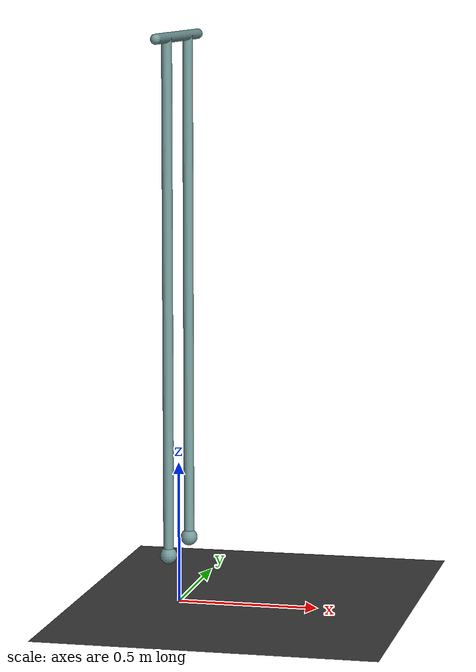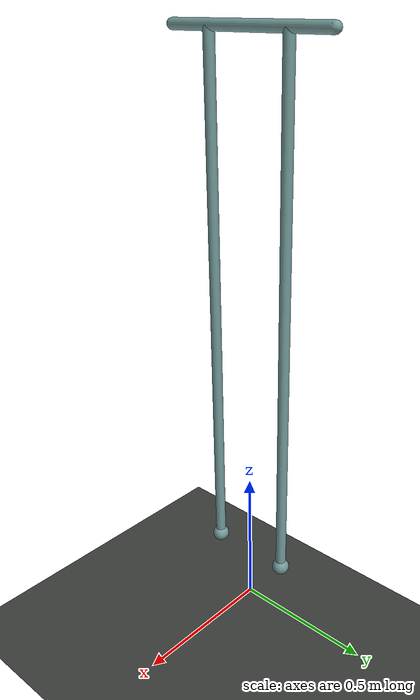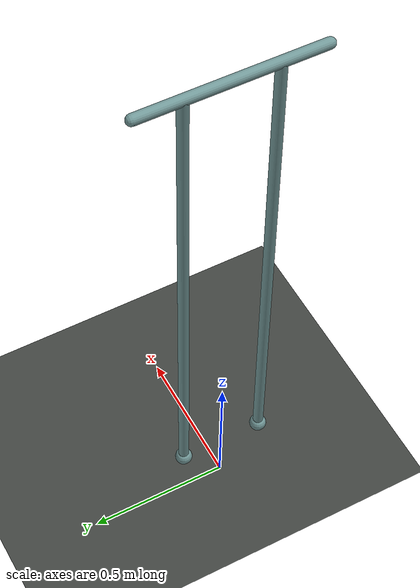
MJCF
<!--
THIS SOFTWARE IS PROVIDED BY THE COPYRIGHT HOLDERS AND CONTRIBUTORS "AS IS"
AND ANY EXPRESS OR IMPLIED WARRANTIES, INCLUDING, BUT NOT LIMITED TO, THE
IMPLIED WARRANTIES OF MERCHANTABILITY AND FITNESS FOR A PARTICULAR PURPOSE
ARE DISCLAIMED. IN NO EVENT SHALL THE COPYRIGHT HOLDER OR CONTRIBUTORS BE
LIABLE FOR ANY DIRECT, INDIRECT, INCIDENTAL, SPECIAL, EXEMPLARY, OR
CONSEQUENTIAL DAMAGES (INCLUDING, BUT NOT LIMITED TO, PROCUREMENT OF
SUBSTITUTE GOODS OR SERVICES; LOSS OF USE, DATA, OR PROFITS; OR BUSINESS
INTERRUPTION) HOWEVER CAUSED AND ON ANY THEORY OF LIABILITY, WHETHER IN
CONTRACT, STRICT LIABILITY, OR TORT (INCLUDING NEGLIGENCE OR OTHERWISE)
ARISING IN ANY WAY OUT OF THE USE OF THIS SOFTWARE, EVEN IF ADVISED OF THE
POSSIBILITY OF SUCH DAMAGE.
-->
<mujoco model="inverted pendulum">
	<compiler	angle="radian"/>

	<option	timestep="0.001"
			iterations="20">
		<flag sensornoise="enable"/>
	</option>

	<default>
	<geom  rgba="0.45 0.6 0.6 1"/>
		<site type="sphere" size="0.02"/>
	</default>
	<worldbody>

		<light directional="true" cutoff="4" exponent="20" diffuse="1 1 1" specular="0 0 0" pos=".9 .3 2.5" dir="-.9 -.3 -2.5 "/>

		<!-- ======= Ground ======= -->
		<geom name="ground" type="plane" pos="0 0 0" size="5 5 5" rgba=" .25 .26 .25 1"/>

		<!-- ======= Beam ======= -->
		<body name="beam" pos="0 0 1.1">
			<!--density of the rod is ten times smaller than other objects (e.g. the ball) for a better point mass approximation-->
            <geom pos="0 0 0.9" type="capsule" size=".018 .3" euler="1.57 0 0"/>

			<body name = "left" pos="0 -0.15 0">
				<geom name="rod1" type="cylinder" pos="0 0 0.0" size=".018 .9" mass="9.66"/> <!--rod1 길이와 질량-->
				<joint name="pivot1" pos="0 0 0.9" axis="0 1 0" limited="false" damping=".05"/>
				<body name="ballbody1" pos="0 0 -0.9">
					<geom name="ballgeom1" type="sphere" size=".03"/>
				</body>
			</body>

			<body name = "right" pos="0 0.15 0">
				<geom name="rod2" type="cylinder" pos="0 0 0.0" size=".018 .9" mass="9.66"/> <!--rod2 길이와 질량-->
				<joint name="pivot2" pos="0 0 0.9" axis="0 1 0" limited="false" damping=".05"/>
				<body name="ballbody2" pos="0 0 -0.9">
					<geom name="ballgeom2" type="sphere" size=".03"/>
				</body>
			</body>
		</body>

	</worldbody>

	<actuator>
        <motor joint='pivot1' name='motor1' gear="60" forcelimited="true" forcerange="-10 10"/>
	 		<position name="position_1" joint="pivot1" kp="20" />
       		<velocity name="velocity_1" joint="pivot1" kv="20" />

		<motor joint='pivot2' name='motor2' gear="60" forcelimited="true" forcerange="-10 10"/>
	     	<position name="position_2" joint="pivot2" kp="20" />
        	<velocity name="velocity_2" joint="pivot2" kv="1" />
	</actuator>

	<contact>
		<exclude body1="beam" body2="left"/>
		<exclude body1="beam" body2="right"/>
	</contact>

</mujoco>
